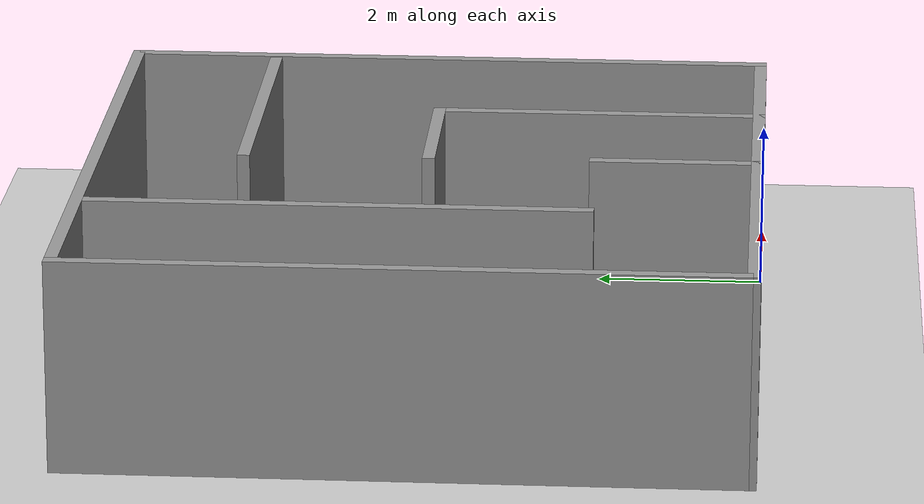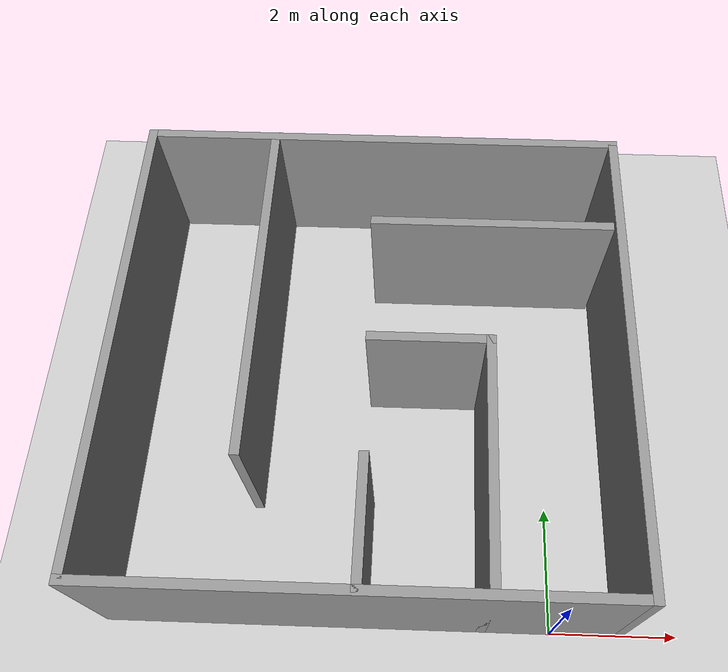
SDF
<sdf version="1.6">
 <world name="default">
  <light name="sun" type="directional">
   <pose>0 0 10 0 -0 0</pose>
   <diffuse>0.8 0.8 0.8 1</diffuse>
   <specular>0.2 0.2 0.2 1</specular>
   <attenuation>
    <range>1000</range>
    <constant>0.9</constant>
    <linear>0.01</linear>
    <quadratic>0.001</quadratic>
   </attenuation>
   <direction>-0.5 0.1 -0.9</direction>
  </light>
  <model name="ground_plane">
   <static>1</static>
   <link name="link">
    <collision name="collision">
     <geometry><plane><normal>0 0 1</normal><size>100 100</size></plane></geometry>
     <surface>
      <contact><collide_bitmask>65535</collide_bitmask></contact>
      <friction><ode><mu>100</mu><mu2>50</mu2></ode></friction>
     </surface>
    </collision>
    <visual name="visual">
     <cast_shadows>0</cast_shadows>
     <geometry><plane><normal>0 0 1</normal><size>100 100</size></plane></geometry>
     <material>
      <script><uri>file://media/materials/scripts/gazebo.material</uri><name>Gazebo/Grey</name></script>
     </material>
    </visual>
   </link>
  </model>
  <gravity>0 0 -9.8</gravity>
  <magnetic_field>6e-06 2.3e-05 -4.2e-05</magnetic_field>
  <atmosphere type="adiabatic"/>
  <physics name="default_physics" default="0" type="ode">
   <max_step_size>0.001</max_step_size>
   <real_time_factor>1</real_time_factor>
   <real_time_update_rate>1000</real_time_update_rate>
  </physics>
  <scene><ambient>0.4 0.4 0.4 1</ambient><background>0.7 0.7 0.7 1</background><shadows>1</shadows></scene>
  <audio><device>default</device></audio>
  <spherical_coordinates>
   <surface_model>EARTH_WGS84</surface_model>
   <latitude_deg>0</latitude_deg>
   <longitude_deg>0</longitude_deg>
   <elevation>0</elevation>
   <heading_deg>0</heading_deg>
  </spherical_coordinates>
  <model name="small_maze">
   <pose>-2.93663 3.94547 0 0 -0 0</pose>
   <link name="Wall_11">
    <collision name="Wall_11_Collision">
     <geometry><box><size>6 0.15 2.5</size></box></geometry>
     <pose>0 0 1.25 0 -0 0</pose>
    </collision>
    <visual name="Wall_11_Visual">
     <pose>0 0 1.25 0 -0 0</pose>
     <geometry><box><size>6 0.15 2.5</size></box></geometry>
     <material>
      <script><uri>file://media/materials/scripts/gazebo.material</uri><name>Gazebo/Grey</name></script>
      <ambient>1 1 1 1</ambient>
     </material>
     <meta><layer>0</layer></meta>
    </visual>
    <pose>-1.85079 0.957737 0 0 -0 1.5708</pose>
   </link>
   <link name="Wall_12">
    <collision name="Wall_12_Collision">
     <geometry><box><size>8 0.15 2.5</size></box></geometry>
     <pose>-1 0 1.25 0 -0 0</pose>
    </collision>
    <visual name="Wall_12_Visual">
     <pose>-1 0 1.25 0 -0 0</pose>
     <geometry><box><size>8 0.15 2.5</size></box></geometry>
     <material>
      <script><uri>file://media/materials/scripts/gazebo.material</uri><name>Gazebo/Grey</name></script>
      <ambient>1 1 1 1</ambient>
     </material>
     <meta><layer>0</layer></meta>
    </visual>
    <pose>1.07421 3.88274 0 0 -0 0</pose>
   </link>
   <link name="Wall_13">
    <collision name="Wall_13_Collision">
     <geometry><box><size>7.83 0.15 2.5</size></box></geometry>
     <pose>0 0 1.25 0 -0 0</pose>
    </collision>
    <visual name="Wall_13_Visual">
     <pose>0 0 1.25 0 -0 0</pose>
     <geometry><box><size>7.83 0.15 2.5</size></box></geometry>
     <material>
      <script><uri>file://media/materials/scripts/gazebo.material</uri><name>Gazebo/Grey</name></script>
      <ambient>1 1 1 1</ambient>
     </material>
     <meta><layer>0</layer></meta>
    </visual>
    <pose>3.99921 -0.042263 0 0 -0 -1.5708</pose>
   </link>
   <link name="Wall_15">
    <collision name="Wall_15_Collision">
     <geometry><box><size>4 0.15 2.5</size></box></geometry>
     <pose>0 0 1.25 0 -0 0</pose>
    </collision>
    <visual name="Wall_15_Visual">
     <pose>0 0 1.25 0 -0 0</pose>
     <geometry><box><size>4 0.15 2.5</size></box></geometry>
     <material>
      <script><uri>file://media/materials/scripts/gazebo.material</uri><name>Gazebo/Grey</name></script>
      <ambient>1 1 1 1</ambient>
     </material>
     <meta><layer>0</layer></meta>
    </visual>
    <pose>1.8936 2.14439 0 0 -0 0</pose>
   </link>
   <link name="Wall_4">
    <collision name="Wall_4_Collision">
     <geometry><box><size>7.83 0.15 2.5</size></box></geometry>
     <pose>0 0 1.25 0 -0 0</pose>
    </collision>
    <visual name="Wall_4_Visual">
     <pose>0 0 1.25 0 -0 0</pose>
     <geometry><box><size>7.83 0.15 2.5</size></box></geometry>
     <material>
      <script><uri>file://media/materials/scripts/gazebo.material</uri><name>Gazebo/Grey</name></script>
      <ambient>1 1 1 1</ambient>
     </material>
     <meta><layer>0</layer></meta>
    </visual>
    <pose>-3.99921 0.042263 0 0 -0 -1.5708</pose>
   </link>
   <link name="Wall_5">
    <collision name="Wall_5_Collision">
     <geometry><box><size>8 0.15 2.5</size></box></geometry>
     <pose>1 0 1.25 0 -0 0</pose>
    </collision>
    <visual name="Wall_5_Visual">
     <pose>1 0 1.25 0 -0 0</pose>
     <geometry><box><size>8 0.15 2.5</size></box></geometry>
     <material>
      <script><uri>file://media/materials/scripts/gazebo.material</uri><name>Gazebo/Grey</name></script>
      <ambient>1 1 1 1</ambient>
     </material>
     <meta><layer>0</layer></meta>
    </visual>
    <pose>-1.07421 -3.88274 0 0 -0 0</pose>
   </link>
   <link name="Wall_6">
    <collision name="Wall_6_Collision">
     <geometry><box><size>4 0.15 2.5</size></box></geometry>
     <pose>0 0 1.25 0 -0 0</pose>
    </collision>
    <visual name="Wall_6_Visual">
     <pose>0 0 1.25 0 -0 0</pose>
     <geometry><box><size>4 0.15 2.5</size></box></geometry>
     <material>
      <script><uri>file://media/materials/scripts/gazebo.material</uri><name>Gazebo/Grey</name></script>
      <ambient>1 1 1 1</ambient>
     </material>
     <meta><layer>0</layer></meta>
    </visual>
    <pose>1.85079 -1.95774 0 0 -0 1.5708</pose>
   </link>
   <link name="Wall_7">
    <collision name="Wall_7_Collision">
     <geometry><box><size>2 0.15 2.5</size></box></geometry>
     <pose>0 0 1.25 0 -0 0</pose>
    </collision>
    <visual name="Wall_7_Visual">
     <pose>0 0 1.25 0 -0 0</pose>
     <geometry><box><size>2 0.15 2.5</size></box></geometry>
     <material>
      <script><uri>file://media/materials/scripts/gazebo.material</uri><name>Gazebo/Grey</name></script>
      <ambient>1 1 1 1</ambient>
     </material>
     <meta><layer>0</layer></meta>
    </visual>
    <pose>0.925794 -0.032737 0 0 -0 3.14159</pose>
   </link>
   <link name="Wall_9">
    <collision name="Wall_9_Collision">
     <geometry><box><size>2 0.15 2.5</size></box></geometry>
     <pose>0 0 1.25 0 -0 0</pose>
    </collision>
    <visual name="Wall_9_Visual">
     <pose>0 0 1.25 0 -0 0</pose>
     <geometry><box><size>2 0.15 2.5</size></box></geometry>
     <material>
      <script><uri>file://media/materials/scripts/gazebo.material</uri><name>Gazebo/Grey</name></script>
      <ambient>1 1 1 1</ambient>
     </material>
     <meta><layer>0</layer></meta>
    </visual>
    <pose>0.002794 -2.91624 0 0 -0 1.5708</pose>
   </link>
   <static>1</static>
  </model>
 </world>
</sdf>
